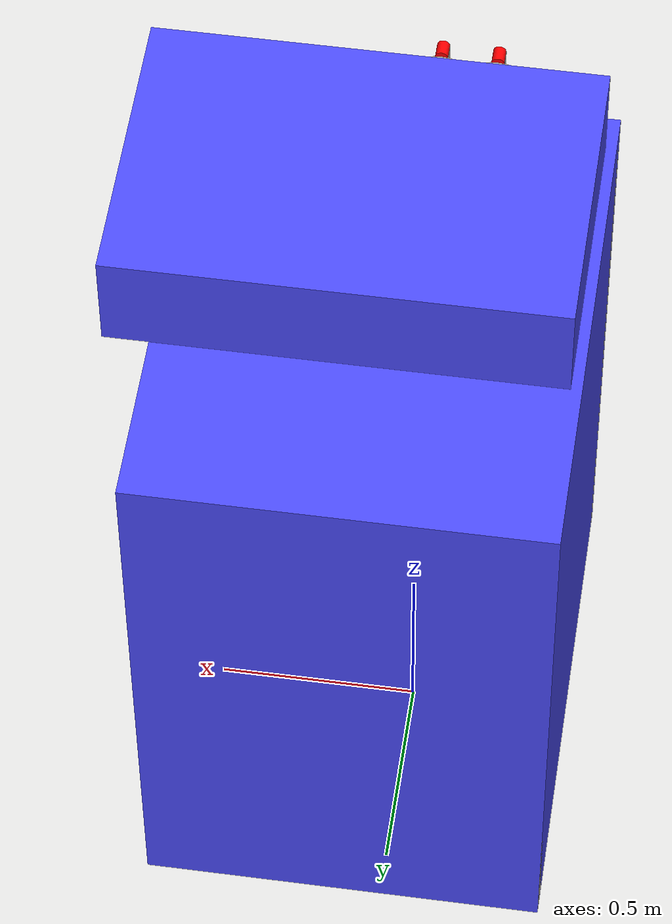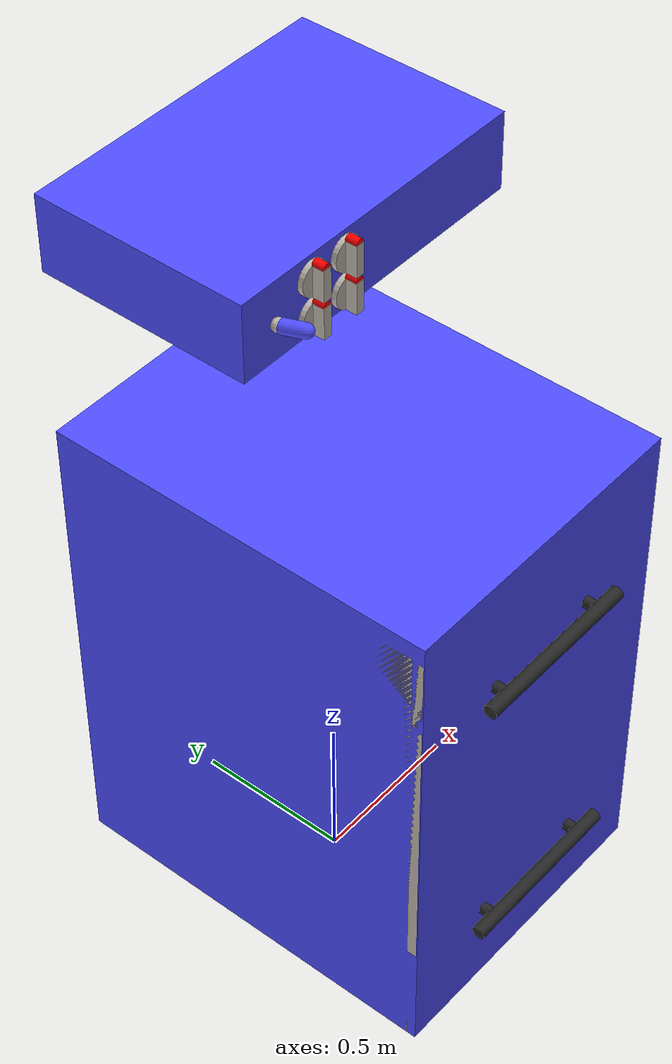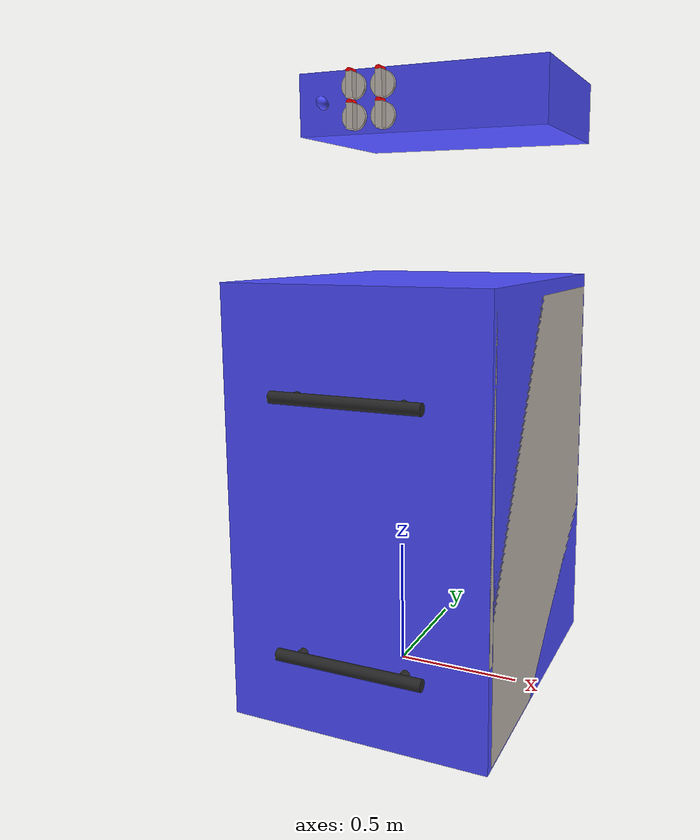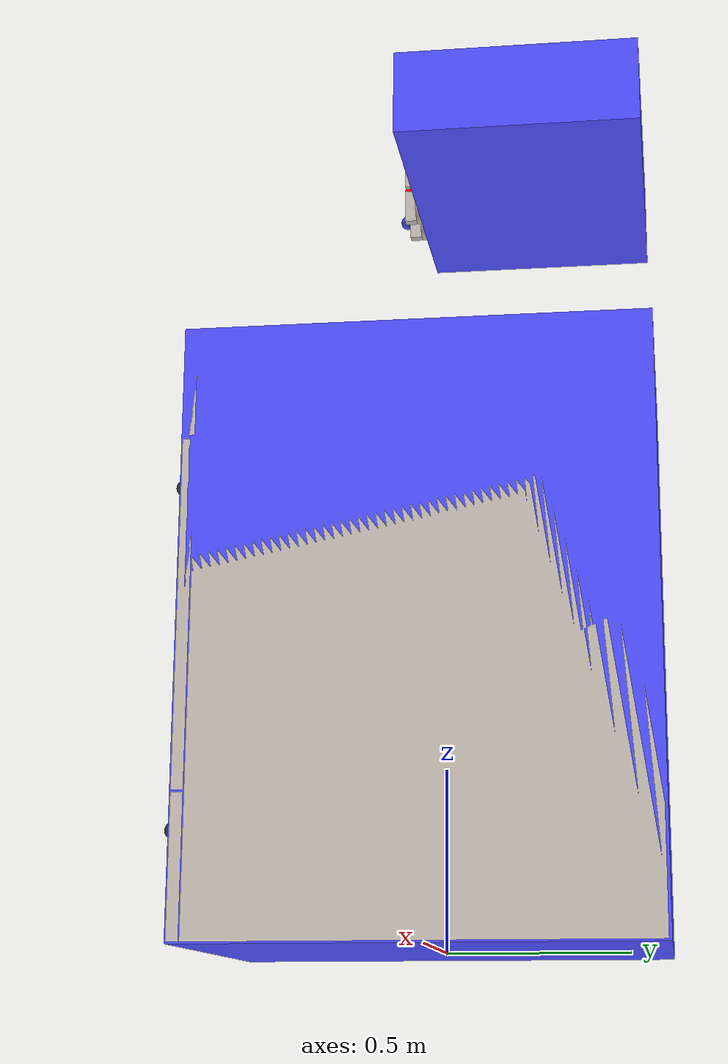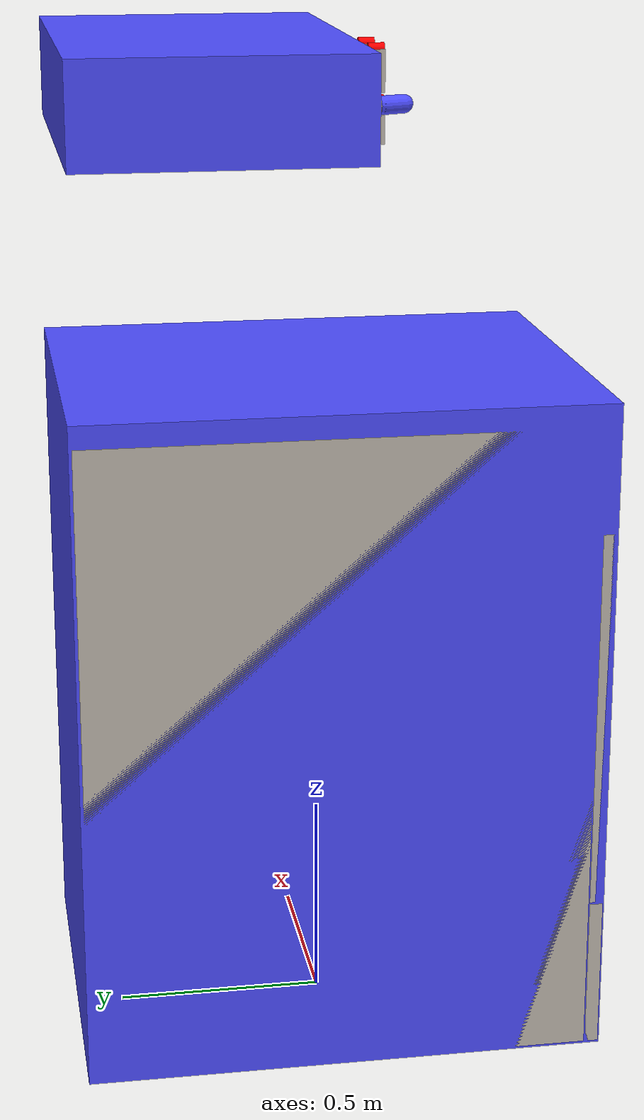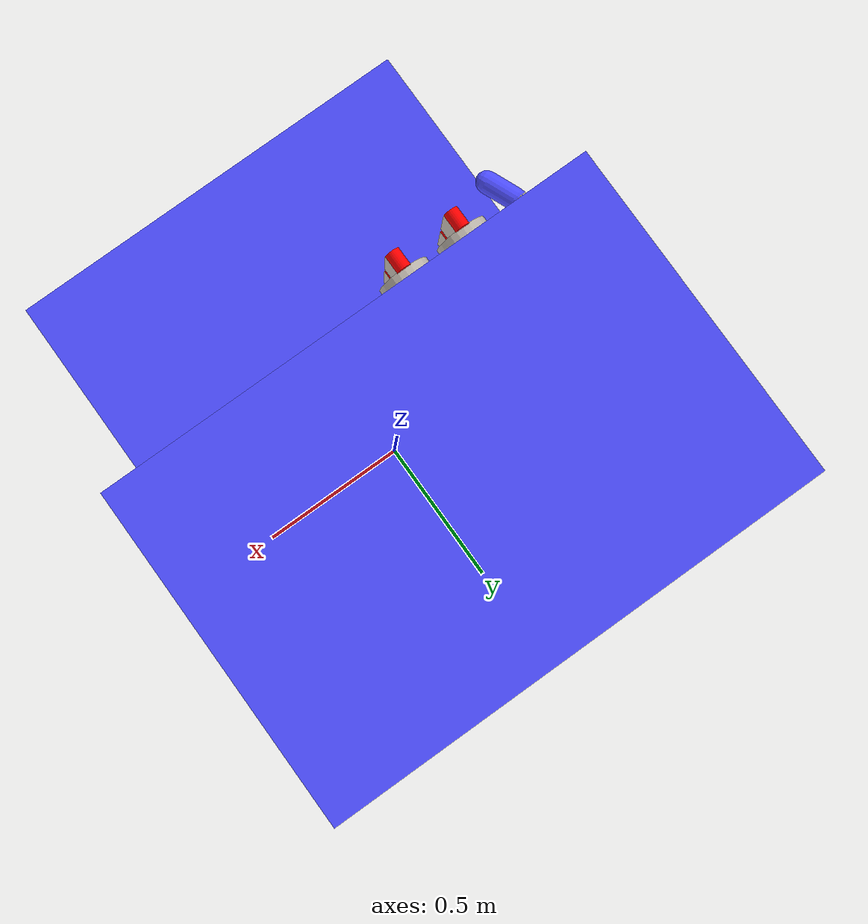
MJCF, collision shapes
<mujoco model="Oven">
    <compiler angle="radian" meshdir="" texturedir=""/>
    <include file='../scenes/basic_scene.xml'/>
    <include file="../kitchen/assets/oven_asset.xml"/>

    <worldbody>

        <body>
		    <include file="../kitchen/assets/oven_chain.xml"/>
        </body>

    </worldbody>

</mujoco>

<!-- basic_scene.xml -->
<mujocoinclude>
    <asset>
    </asset>

    <worldbody>
        <site name='xaxis' pos='.5 0 0' size='.005 .5' type='capsule' rgba='1 0 0 .25' euler='0 1.57 0' group='3'/>
        <site name='yaxis' pos='0 .5 0' size='.005 .5' type='capsule' rgba='0 1 0 .25' euler='1.57 0 0' group='3'/>
    </worldbody>
</mujocoinclude>

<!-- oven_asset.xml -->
<mujocoinclude>

    <compiler inertiafromgeom="auto" inertiagrouprange="4 4" angle="radian"/>

    <asset>
        <mesh file="../kitchen/adept_models/kitchen/meshes/hood.stl" name="hood"/>
        <mesh file="../kitchen/adept_models/kitchen/meshes/lightswitch.stl" name="lightswitch"/>
        <mesh file="../kitchen/adept_models/kitchen/meshes/lightswitchbase.stl" name="lightswitchbase"/>
        <mesh file="../kitchen/adept_models/kitchen/meshes/knob.stl" name="knob"/>
        <mesh file="../kitchen/adept_models/kitchen/meshes/stoverim.stl" name="stoverim"/>
        <mesh file="../kitchen/adept_models/kitchen/meshes/burnerplate.stl" name="burnerplate"/>
        <mesh file="../kitchen/adept_models/kitchen/meshes/ovenhandle.stl" name="ovenhandle"/>
        <mesh file="../kitchen/adept_models/kitchen/meshes/oven.stl" name="oven"/>
        <mesh file="../kitchen/adept_models/kitchen/meshes/oventop.stl" name="oventop"/>
        <mesh file="../kitchen/adept_models/kitchen/meshes/ovenwindow.stl" name="ovenwindow"/>

        <texture name="T_oven_wood" type="cube" height="1" width="1"  file="../kitchen/adept_models/kitchen/textures/wood1.png"/>
        <texture name="T_oven_metal" type="cube" height="1" width="1" file="../kitchen/adept_models/kitchen/textures/metal1.png"/>

        <material name="oven_wood" texture="T_oven_wood" texrepeat="3 3" reflectance="0.7" shininess=".4" texuniform="false"/>
        <material name="oven_metal" rgba="1 1 1 1" texture="T_oven_metal" texrepeat="3 3" reflectance="1" shininess="1" texuniform="false"/>
        <material name="oven_black" rgba=".15 .15 .15 1" reflectance=".2" shininess=".2" />
        <material name="oven_burner" rgba="2 0 0 1" reflectance=".2" shininess=".2" />
        <material name="oven_block" rgba=".1 .1 .1 1"/>
        <material name="oven_collision_blue" rgba="0.3 0.3 1.0 0.5" shininess="0" specular="0"/>
    </asset>
    <default>
        <default class="oven">
            <joint armature="0.001" damping="2" limited="true"/>
            <geom conaffinity="0" contype="0" group="2" material="oven_metal" type="mesh"/>
            <default class="ovenlight" >
                <light directional="false" castshadow="true" attenuation="0.03 0.03 0.03" cutoff="100" exponent="25" diffuse=".7 .65 .65" specular=".3 .3 .3"/>
            </default>
            <default class="oven_collision">
                <geom conaffinity="1" condim="3" contype="0" group="4" margin="0.001" material="oven_collision_blue" type="mesh"/>
            </default>
        </default>
    </default>

    <equality>
        <joint polycoef="0 174 0 0 0" joint1="knob_Joint_1" joint2="burner_Joint_1"/>
        <joint polycoef="0 174 0 0 0" joint1="knob_Joint_2" joint2="burner_Joint_2"/>
        <joint polycoef="0 174 0 0 0" joint1="knob_Joint_3" joint2="burner_Joint_3"/>
        <joint polycoef="0 174 0 0 0" joint1="knob_Joint_4" joint2="burner_Joint_4"/>
        <joint polycoef="0 14 0 0 0" joint1="lightswitch_joint" joint2="light_joint"/>
    </equality>

</mujocoinclude>

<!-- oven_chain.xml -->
<mujocoinclude>

    <light class="ovenlight" name="ovenlight" pos="0 .2 2.25" dir="0 -.02 -.1" attenuation="0.05 0.05 0.05" cutoff="75" diffuse=".7 .65 .65" specular=".3 .3 .3"/>

    <body name="ovenroot" childclass="oven" pos="0.115 -0.2921 0.9834">
        <geom material="oven_black" mesh="burnerplate" pos="-0.24 -0.119 0.629"/>
        <geom material="oven_black" mesh="burnerplate" pos="-0.237 0.322 0.629"/>
        <geom material="oven_black" mesh="burnerplate" pos="0.204 0.322 0.629"/>
        <geom material="oven_black" mesh="burnerplate" pos="0.206 -0.119 0.629"/>
        <geom material="oven_black" euler="1.57 0 0" pos="-.215 -0.36 -0.682" size="0.018 0.03" type="cylinder"/>
        <geom material="oven_black" euler="1.57 0 0" pos=".184 -0.36 -0.682" size="0.018 0.03" type="cylinder"/>
        <geom material="oven_black" euler="0 1.57 0" pos="-0.015 -0.39 -0.682" size="0.022 0.28" type="cylinder"/>
        <geom material="oven_black" euler="1.57 0 0" pos="-.215 -0.36 0.254" size="0.018 0.03" type="cylinder"/>
        <geom material="oven_black" euler="1.57 0 0" pos=".184 -0.36 0.254" size="0.018 0.03" type="cylinder"/>
        <geom material="oven_black" euler="0 1.57 0" pos="-0.015 -0.39 0.254" size="0.022 0.28" type="cylinder"/>
        <geom material="oven_black" mesh="oventop" pos="-0.017 0.275 0.607"/>
        <geom material="oven_black" mesh="ovenwindow" pos="0.9793 0.2921 -1.1877"/>
        <geom material="oven_black" pos="-0.011 -.327 -.05" size="0.35 0.016 0.22" type="box"/>
        <geom mesh="stoverim" pos="0.203 0.323 0.619"/>
        <geom mesh="stoverim" pos="-0.24 -0.12 0.619"/>
        <geom mesh="stoverim" pos="-0.237 0.323 0.619"/>
        <geom mesh="stoverim" pos="0.207 -0.12 0.619"/>
        <geom pos="-0.017 -.326 .455" size="0.5 0.016 0.12" type="box"/>
        <geom pos="-0.017 -.326 -.795" size="0.5 0.016 0.185" type="box"/>
        <geom pos="-0.017 -.326 -.14" size="0.5 0.016 0.465" type="box"/>
        <geom pos="-0.017 0.295 -0.2" size="0.5 0.602 0.78" type="box"/>

        <geom class="oven_collision" pos="-0.017 0.28 -0.175" size="0.5 0.625 0.81" type="box" mass="5"/>
        <geom class="oven_collision" euler="1.57 0 0" pos="-.215 -0.36 -0.682" size="0.018 0.03" type="cylinder" mass=".2"/>
        <geom class="oven_collision" euler="1.57 0 0" pos=".184 -0.36 -0.682" size="0.018 0.03" type="cylinder" mass=".2"/>
        <geom class="oven_collision" euler="0 1.57 0" pos="-0.015 -0.39 -0.682" size="0.022 0.28" type="cylinder" mass=".2"/>
        <geom class="oven_collision" euler="1.57 0 0" pos="-.215 -0.36 0.254" size="0.018 0.03" type="cylinder" mass=".2"/>
        <geom class="oven_collision" euler="1.57 0 0" pos=".184 -0.36 0.254" size="0.018 0.03" type="cylinder" mass=".2"/>
        <geom class="oven_collision" euler="0 1.57 0" pos="-0.015 -0.39 0.254" size="0.022 0.28" type="cylinder" mass=".2"/>
        <body name="knob 1" euler="1.57 0 0" pos="-0.148 0.22 1.243">
            <joint name="knob_Joint_1" axis="0 0 1" type="hinge" limited="true" range="-1.57 0"/>
            <geom type="box" pos="0 0 .038" size=".014 .048 .018"/>
            <geom type="cylinder" pos="0 0 .013" size=".05 .008"/>
            <geom type="cylinder" pos="0 0.048 .037" size=".014 .018" rgba="1 0 0 1"/>

            <geom class="oven_collision" type="box" pos="0 0 .038" size=".014 .048 .018" mass=".01"/>
            <geom class="oven_collision" type="cylinder" pos="0 0 .013" size=".05 .008" mass=".01"/>
            <site type="sphere" name="knob1_site" pos="0 0 .038" size=".01" group="3" rgba="1 1 0 1"/>
        </body>
        <body name="Burner 1" pos="0.206 -0.119 0.61">
            <inertial pos="0 0 0" mass=".01" diaginertia="0.001 0.001 0.001"/>
            <joint name="burner_Joint_1" axis="0 0 -1" type="slide" limited="true" range="-.009 0"/>
            <geom material="oven_burner" size="0.1 0.01" type="cylinder"/>
        </body>
        <body name="knob 2" euler="1.57 0 0" pos="-0.271 0.22 1.243">
            <joint name="knob_Joint_2" axis="0 0 1" type="hinge" limited="true" range="-1.57 0"/>
            <geom type="box" pos="0 0 .038" size=".014 .048 .018"/>
            <geom type="cylinder" pos="0 0 .013" size=".05 .008"/>
            <geom type="cylinder" pos="0 0.048 .037" size=".014 .018" rgba="1 0 0 1"/>

            <geom class="oven_collision" type="box" pos="0 0 .038" size=".014 .048 .018" mass=".01"/>
            <geom class="oven_collision" type="cylinder" pos="0 0 .013" size=".05 .008" mass=".01"/>
            <site type="sphere" name="knob2_site" pos="0 0 .038" size=".01" group="3" rgba="0 0 1 1"/>
        </body>
        <body name="Burner 2" pos="-0.24 -0.119 0.61">
            <inertial pos="0 0 0" mass=".01" diaginertia="0.001 0.001 0.001"/>
            <joint name="burner_Joint_2" axis="0 0 -1" type="slide" limited="true" stiffness="1" range="-.009 0"/>
            <geom material="oven_burner" size="0.1 0.01" type="cylinder" group="1"/>
        </body>
        <body name="knob 3" euler="1.57 0 0" pos="-0.148 0.22 1.357">
            <joint name="knob_Joint_3" axis="0 0 1" type="hinge" limited="true" range="-1.57 0"/>
            <geom type="box" pos="0 0 .038" size=".014 .048 .018"/>
            <geom type="cylinder" pos="0 0 .013" size=".05 .008"/>
            <geom type="cylinder" pos="0 0.048 .037" size=".014 .018" rgba="1 0 0 1"/>

            <geom class="oven_collision" type="box" pos="0 0 .038" size=".014 .048 .018" mass=".01"/>
            <geom class="oven_collision" type="cylinder" pos="0 0 .013" size=".05 .008" mass=".01"/>
            <site type="sphere" name="knob3_site" pos="0 0 .038" size=".01" group="3" rgba="0 1 0 1"/>
        </body>
        <body name="Burner 3" pos="0.204 0.322 0.61">
            <inertial pos="0 0 0" mass=".01" diaginertia="0.001 0.001 0.001"/>
            <joint name="burner_Joint_3" axis="0 0 -1" type="slide" limited="true" stiffness="1" range="-.009 0"/>
            <geom material="oven_burner" size="0.1 0.01" type="cylinder" group="1"/>
        </body>
        <body name="knob 4" euler="1.57 0 0" pos="-0.271 0.22 1.357">
            <joint name="knob_Joint_4" axis="0 0 1" type="hinge" limited="true" range="-1.57 0"/>
            <geom type="box" pos="0 0 .038" size=".014 .048 .018"/>
            <geom type="cylinder" pos="0 0 .013" size=".05 .008"/>
            <geom type="cylinder" pos="0 0.048 .037" size=".014 .018" rgba="1 0 0 1"/>

            <geom class="oven_collision" type="box" pos="0 0 .038" size=".014 .048 .018" mass=".01"/>
            <geom class="oven_collision" type="cylinder" pos="0 0 .013" size=".05 .008" mass=".01"/>
            <site type="sphere" name="knob4_site" pos="0 0 .038" size=".01" group="3" rgba="1 0 0 1"/>
        </body>
        <body name="Burner 4" pos="-0.237 0.322 0.61">
            <inertial pos="0 0 0" mass=".01" diaginertia="0.001 0.001 0.001"/>
            <joint name="burner_Joint_4" axis="0 0 -1" type="slide" limited="true" stiffness="1" range="-.009 0"/>
            <geom material="oven_burner" size="0.1 0.01" type="cylinder" group="1"/>
        </body>
    </body>
    <body name="hoodroot" pos="0.1 0.188 2.33" childclass="oven">
        <geom material="oven_black" mesh="hood" pos="-0.1 -0.2896 -2.329"/>
        <geom class="oven_collision" pos="0 0.073 -0.046" size="0.502 0.336 0.12" type="box" mass="2"/>
        <body name="lightswitchbaseroot" pos="-0.4 -0.2473 -0.05" >
            <geom mesh="lightswitchbase" pos="0 -0.0123 0" euler="-1.57 0 0"/>
            <body name="lightswitchroot">
                <inertial pos="-0.0046 0.35 0.0131" mass=".1" diaginertia="0.001 0.001 0.001"/>
                <joint axis="0 0 1" limited="true" name="lightswitch_joint" frictionloss="1" range="-.7 0"/>
                <geom pos="0.0252 -0.06 0" euler="-1.57 -.4 0" size="0.02 0.035" type="capsule"/>
                <geom class="oven_collision" euler="-1.57 -.4 0" pos="0.0263 -0.065 0" size="0.021 0.03" type="capsule" mass=".01"/>
                <site type="sphere" name="light_site" pos="0.0315 -0.075 0" size=".01" group="3" rgba="1 0 0 1"/>
            </body>
        </body>
        <body name="lightblock_hinge" pos="-0.0044 -0.3 -0.1361">
            <inertial pos="-0.0046 0.35 0.0131" mass=".01" diaginertia="0.001 0.001 0.001"/>
            <joint axis="0 0 -1" type="slide" limited="true" name="light_joint" frictionloss="1" range="-.05 0"/>
            <geom material="oven_block" pos="-0.008 0.4 -0.01" size="0.4 0.3 0.015" type="box"/>
        </body>
    </body>
</mujocoinclude>
